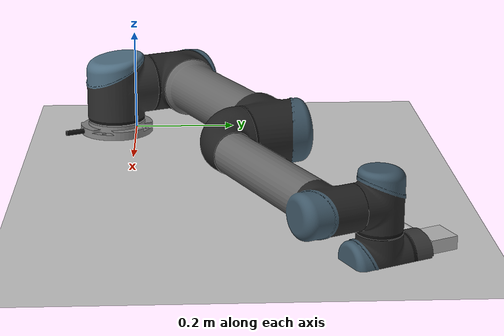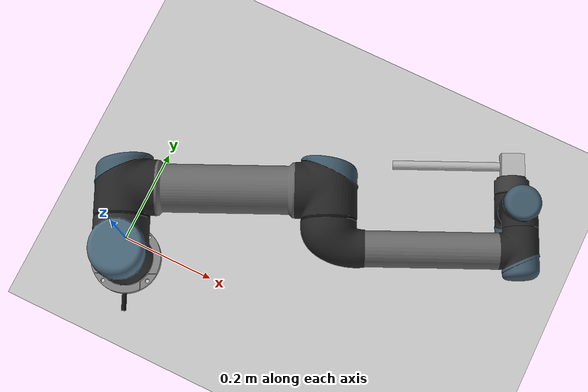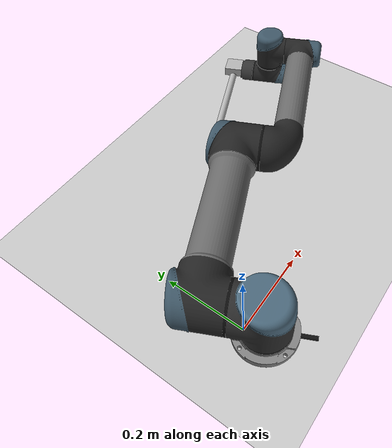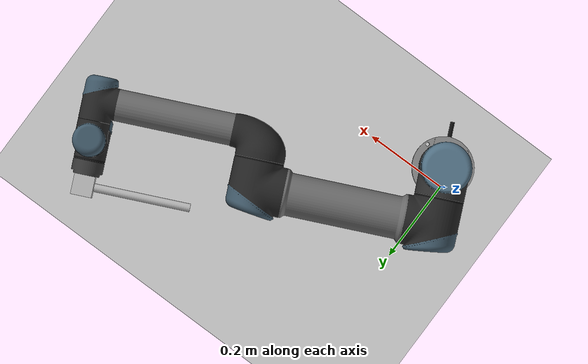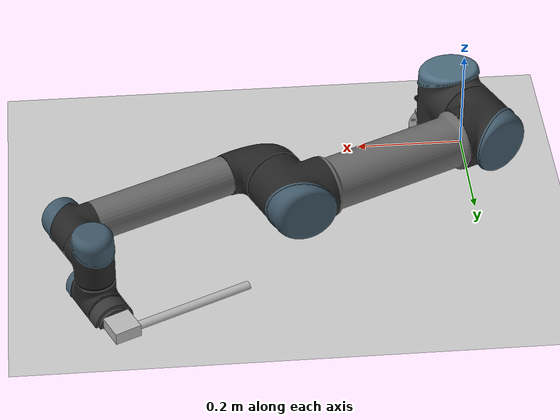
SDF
<sdf version="1.6">
 <world name="default">
  <light name="sun" type="directional">
   <pose>0 0 10 0 -0 0</pose>
   <diffuse>0.8 0.8 0.8 1</diffuse>
   <specular>0.2 0.2 0.2 1</specular>
   <attenuation>
    <range>1000</range>
    <constant>0.9</constant>
    <linear>0.01</linear>
    <quadratic>0.001</quadratic>
   </attenuation>
   <direction>-0.5 0.1 -0.9</direction>
  </light>
  <model name="ground_plane">
   <static>1</static>
   <link name="link">
    <collision name="collision">
     <geometry><plane><normal>0 0 1</normal><size>100 100</size></plane></geometry>
     <surface>
      <contact><collide_bitmask>65535</collide_bitmask></contact>
      <friction><ode><mu>100</mu><mu2>50</mu2></ode></friction>
     </surface>
    </collision>
    <visual name="visual">
     <cast_shadows>0</cast_shadows>
     <geometry><plane><normal>0 0 1</normal><size>100 100</size></plane></geometry>
     <material>
      <script><uri>file://media/materials/scripts/gazebo.material</uri><name>Gazebo/Grey</name></script>
     </material>
    </visual>
   </link>
  </model>
  <gravity>0 0 -9.8</gravity>
  <magnetic_field>6e-06 2.3e-05 -4.2e-05</magnetic_field>
  <atmosphere type="adiabatic"/>
  <physics name="default_physics" default="0" type="ode">
   <max_step_size>0.001</max_step_size>
   <real_time_factor>1</real_time_factor>
   <real_time_update_rate>1000</real_time_update_rate>
  </physics>
  <scene><ambient>0.4 0.4 0.4 1</ambient><background>0.7 0.7 0.7 1</background><shadows>1</shadows></scene>
  <spherical_coordinates>
   <surface_model>EARTH_WGS84</surface_model>
   <latitude_deg>0</latitude_deg>
   <longitude_deg>0</longitude_deg>
   <elevation>0</elevation>
   <heading_deg>0</heading_deg>
  </spherical_coordinates>
  <model name="ur5">
   <link name="base_link">
    <inertial>
     <mass>4</mass>
     <inertia>
      <ixx>0.00443333</ixx>
      <ixy>0</ixy>
      <ixz>0</ixz>
      <iyy>0.00443333</iyy>
      <iyz>0</iyz>
      <izz>0.0072</izz>
     </inertia>
    </inertial>
    <collision name="base_link_inertia_collision">
     <geometry>
      <mesh>
       <scale>1 1 1</scale>
       <uri>/home/yera/rsp_workspace/src/fmauch_universal_robot/ur_description/meshes/ur5/collision/base.stl</uri>
      </mesh>
     </geometry>
    </collision>
    <visual name="base_link_inertia_visual">
     <geometry>
      <mesh>
       <scale>1 1 1</scale>
       <uri>/home/yera/rsp_workspace/src/fmauch_universal_robot/ur_description/meshes/ur5/visual/base.dae</uri>
      </mesh>
     </geometry>
    </visual>
   </link>
   <link name="shoulder_link">
    <pose>0 0 0.089159 0 -0 -3.14159</pose>
    <inertial>
     <mass>3.7</mass>
     <inertia>
      <ixx>0.0149724</ixx>
      <ixy>0</ixy>
      <ixz>0</ixz>
      <iyy>0.0149724</iyy>
      <iyz>0</iyz>
      <izz>0.0104063</izz>
     </inertia>
    </inertial>
    <collision name="shoulder_link_collision">
     <pose>0 0 0 0 -0 -3.14159</pose>
     <geometry>
      <mesh>
       <scale>1 1 1</scale>
       <uri>/home/yera/rsp_workspace/src/fmauch_universal_robot/ur_description/meshes/ur5/collision/shoulder.stl</uri>
      </mesh>
     </geometry>
    </collision>
    <visual name="shoulder_link_visual">
     <pose>0 0 0 0 -0 -3.14159</pose>
     <geometry>
      <mesh>
       <scale>1 1 1</scale>
       <uri>/home/yera/rsp_workspace/src/fmauch_universal_robot/ur_description/meshes/ur5/visual/shoulder.dae</uri>
      </mesh>
     </geometry>
    </visual>
   </link>
   <joint name="shoulder_pan_joint" type="revolute">
    <child>shoulder_link</child>
    <parent>base_link</parent>
    <axis>
     <xyz>0 0 1</xyz>
     <limit><lower>-6.28319</lower><upper>6.28319</upper><effort>150</effort><velocity>3.14159</velocity></limit>
     <dynamics>
      <damping>0</damping>
      <friction>0</friction>
      <spring_reference>0</spring_reference>
      <spring_stiffness>0</spring_stiffness>
     </dynamics>
     <use_parent_model_frame>0</use_parent_model_frame>
    </axis>
   </joint>
   <link name="upper_arm_link">
    <pose>0 0 0.089159 1.5708 -0 -3.14159</pose>
    <inertial>
     <pose>-0.2125 0 0.136 3.14159 1.57079 3.14159</pose>
     <mass>8.393</mass>
     <inertia>
      <ixx>0.133886</ixx>
      <ixy>0</ixy>
      <ixz>0</ixz>
      <iyy>0.133886</iyy>
      <iyz>0</iyz>
      <izz>0.0151074</izz>
     </inertia>
    </inertial>
    <collision name="upper_arm_link_collision">
     <pose>0 0 0.13585 1.5708 0 -1.5708</pose>
     <geometry>
      <mesh>
       <scale>1 1 1</scale>
       <uri>/home/yera/rsp_workspace/src/fmauch_universal_robot/ur_description/meshes/ur5/collision/upperarm.stl</uri>
      </mesh>
     </geometry>
    </collision>
    <visual name="upper_arm_link_visual">
     <pose>0 0 0.13585 1.5708 0 -1.5708</pose>
     <geometry>
      <mesh>
       <scale>1 1 1</scale>
       <uri>/home/yera/rsp_workspace/src/fmauch_universal_robot/ur_description/meshes/ur5/visual/upperarm.dae</uri>
      </mesh>
     </geometry>
    </visual>
   </link>
   <joint name="shoulder_lift_joint" type="revolute">
    <child>upper_arm_link</child>
    <parent>shoulder_link</parent>
    <axis>
     <xyz>0 0 1</xyz>
     <limit><lower>-6.28319</lower><upper>6.28319</upper><effort>150</effort><velocity>3.14159</velocity></limit>
     <dynamics>
      <damping>0</damping>
      <friction>0</friction>
      <spring_reference>0</spring_reference>
      <spring_stiffness>0</spring_stiffness>
     </dynamics>
     <use_parent_model_frame>0</use_parent_model_frame>
    </axis>
   </joint>
   <link name="forearm_link">
    <pose>0.425 0 0.089159 1.5708 -0 -3.14159</pose>
    <inertial>
     <pose>-0.196125 0 0.0165 3.14159 1.57079 3.14159</pose>
     <mass>2.275</mass>
     <inertia>
      <ixx>0.0312168</ixx>
      <ixy>0</ixy>
      <ixz>0</ixz>
      <iyy>0.0312168</iyy>
      <iyz>0</iyz>
      <izz>0.004095</izz>
     </inertia>
    </inertial>
    <collision name="forearm_link_collision">
     <pose>0 0 0.0165 1.5708 0 -1.5708</pose>
     <geometry>
      <mesh>
       <scale>1 1 1</scale>
       <uri>/home/yera/rsp_workspace/src/fmauch_universal_robot/ur_description/meshes/ur5/collision/forearm.stl</uri>
      </mesh>
     </geometry>
    </collision>
    <visual name="forearm_link_visual">
     <pose>0 0 0.0165 1.5708 0 -1.5708</pose>
     <geometry>
      <mesh>
       <scale>1 1 1</scale>
       <uri>/home/yera/rsp_workspace/src/fmauch_universal_robot/ur_description/meshes/ur5/visual/forearm.dae</uri>
      </mesh>
     </geometry>
    </visual>
   </link>
   <joint name="elbow_joint" type="revolute">
    <child>forearm_link</child>
    <parent>upper_arm_link</parent>
    <axis>
     <xyz>0 0 1</xyz>
     <limit><lower>-3.14159</lower><upper>3.14159</upper><effort>150</effort><velocity>3.14159</velocity></limit>
     <dynamics>
      <damping>0</damping>
      <friction>0</friction>
      <spring_reference>0</spring_reference>
      <spring_stiffness>0</spring_stiffness>
     </dynamics>
     <use_parent_model_frame>0</use_parent_model_frame>
    </axis>
   </joint>
   <link name="wrist_1_link">
    <pose>0.81725 0.10915 0.089159 1.5708 -0 -3.14159</pose>
    <inertial>
     <mass>1.219</mass>
     <inertia>
      <ixx>0.00201389</ixx>
      <ixy>0</ixy>
      <ixz>0</ixz>
      <iyy>0.00201389</iyy>
      <iyz>0</iyz>
      <izz>0.0021942</izz>
     </inertia>
    </inertial>
    <collision name="wrist_1_link_collision">
     <pose>0 0 -0.093 1.5708 -0 0</pose>
     <geometry>
      <mesh>
       <scale>1 1 1</scale>
       <uri>/home/yera/rsp_workspace/src/fmauch_universal_robot/ur_description/meshes/ur5/collision/wrist1.stl</uri>
      </mesh>
     </geometry>
    </collision>
    <visual name="wrist_1_link_visual">
     <pose>0 0 -0.093 1.5708 -0 0</pose>
     <geometry>
      <mesh>
       <scale>1 1 1</scale>
       <uri>/home/yera/rsp_workspace/src/fmauch_universal_robot/ur_description/meshes/ur5/visual/wrist1.dae</uri>
      </mesh>
     </geometry>
    </visual>
   </link>
   <joint name="wrist_1_joint" type="revolute">
    <child>wrist_1_link</child>
    <parent>forearm_link</parent>
    <axis>
     <xyz>0 0 1</xyz>
     <limit><lower>-6.28319</lower><upper>6.28319</upper><effort>28</effort><velocity>3.14159</velocity></limit>
     <dynamics>
      <damping>0</damping>
      <friction>0</friction>
      <spring_reference>0</spring_reference>
      <spring_stiffness>0</spring_stiffness>
     </dynamics>
     <use_parent_model_frame>0</use_parent_model_frame>
    </axis>
   </joint>
   <link name="wrist_2_link">
    <pose>0.81725 0.10915 -0.005491 -3.14159 -0 -3.14159</pose>
    <inertial>
     <mass>1.219</mass>
     <inertia>
      <ixx>0.00183104</ixx>
      <ixy>0</ixy>
      <ixz>0</ixz>
      <iyy>0.00183104</iyy>
      <iyz>0</iyz>
      <izz>0.0021942</izz>
     </inertia>
    </inertial>
    <collision name="wrist_2_link_collision">
     <pose>0 0 -0.095 0 -0 0</pose>
     <geometry>
      <mesh>
       <scale>1 1 1</scale>
       <uri>/home/yera/rsp_workspace/src/fmauch_universal_robot/ur_description/meshes/ur5/collision/wrist2.stl</uri>
      </mesh>
     </geometry>
    </collision>
    <visual name="wrist_2_link_visual">
     <pose>0 0 -0.095 0 -0 0</pose>
     <geometry>
      <mesh>
       <scale>1 1 1</scale>
       <uri>/home/yera/rsp_workspace/src/fmauch_universal_robot/ur_description/meshes/ur5/visual/wrist2.dae</uri>
      </mesh>
     </geometry>
    </visual>
   </link>
   <joint name="wrist_2_joint" type="revolute">
    <child>wrist_2_link</child>
    <parent>wrist_1_link</parent>
    <axis>
     <xyz>0 0 1</xyz>
     <limit><lower>-6.28319</lower><upper>6.28319</upper><effort>28</effort><velocity>3.14159</velocity></limit>
     <dynamics>
      <damping>0</damping>
      <friction>0</friction>
      <spring_reference>0</spring_reference>
      <spring_stiffness>0</spring_stiffness>
     </dynamics>
     <use_parent_model_frame>0</use_parent_model_frame>
    </axis>
   </joint>
   <link name="wrist_3_link">
    <pose>0.81725 0.19145 -0.005491 1.5708 -0 -3.14159</pose>
    <inertial>
     <pose>0 0 -0.01525 0 -0 0</pose>
     <mass>0.1879</mass>
     <inertia>
      <ixx>8.06247e-05</ixx>
      <ixy>0</ixy>
      <ixz>0</ixz>
      <iyy>8.06247e-05</iyy>
      <iyz>0</iyz>
      <izz>0.000132117</izz>
     </inertia>
    </inertial>
    <collision name="wrist_3_link_collision">
     <pose>0 0 -0.0818 1.5708 -0 0</pose>
     <geometry>
      <mesh>
       <scale>1 1 1</scale>
       <uri>/home/yera/rsp_workspace/src/fmauch_universal_robot/ur_description/meshes/ur5/collision/wrist3.stl</uri>
      </mesh>
     </geometry>
    </collision>
    <visual name="wrist_3_link_visual">
     <pose>0 0 -0.0818 1.5708 -0 0</pose>
     <geometry>
      <mesh>
       <scale>1 1 1</scale>
       <uri>/home/yera/rsp_workspace/src/fmauch_universal_robot/ur_description/meshes/ur5/visual/wrist3.dae</uri>
      </mesh>
     </geometry>
    </visual>
    <visual name="wrist_3_link_fixed_joint_lump__needle_driver_base_visual_1">
     <pose>-0 0 0.025 0 -0 0.025</pose>
     <geometry><box><size>0.05 0.05 0.05</size></box></geometry>
    </visual>
    <visual name="wrist_3_link_fixed_joint_lump__needle_driver_shaft_visual_2">
     <pose>0.14005 0 0.025 3.14159 1.57079 -3.14159</pose>
     <geometry><cylinder><length>0.231</length><radius>0.01</radius></cylinder></geometry>
    </visual>
   </link>
   <joint name="wrist_3_joint" type="revolute">
    <child>wrist_3_link</child>
    <parent>wrist_2_link</parent>
    <axis>
     <xyz>0 0 1</xyz>
     <limit><lower>-6.28319</lower><upper>6.28319</upper><effort>28</effort><velocity>3.14159</velocity></limit>
     <dynamics>
      <damping>0</damping>
      <friction>0</friction>
      <spring_reference>0</spring_reference>
      <spring_stiffness>0</spring_stiffness>
     </dynamics>
     <use_parent_model_frame>0</use_parent_model_frame>
    </axis>
   </joint>
   <pose>0.022634 -0.03978 0.003002 -1.9e-05 4e-06 0.430732</pose>
  </model>
 </world>
</sdf>
